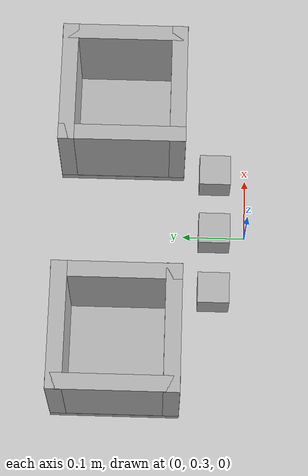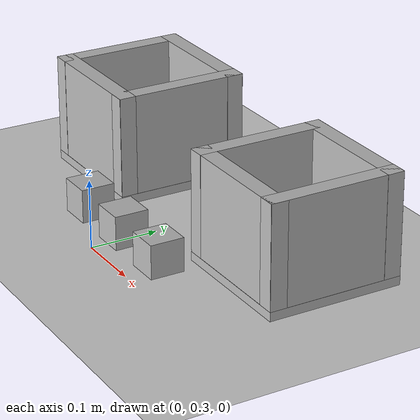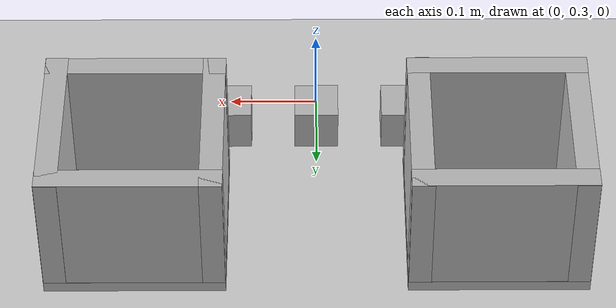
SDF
<?xml version="1.0" ?>
<sdf version="1.5">
  <world name="default">
    <include>
      <uri>model://ground_plane</uri>
    </include>
    <include>
      <uri>model://sun</uri>
    </include>

    <model name="box_with_walls_A">
      <pose>0.2 0.5 0 0 0 0</pose>

      <!-- Bottom -->
      <link name="bottom">
        <pose>0 0 0 0 0 0</pose>
        <collision name="collision">
          <geometry>
            <box>
              <size>0.2 0.2 0.025</size>
            </box>
          </geometry>
        </collision>
        <visual name="visual">
          <geometry>
            <box>
              <size>0.2 0.2 0.025</size>
            </box>
          </geometry>
        </visual>
      </link>

      <!-- Wall 1 -->
      <link name="wall_1">
        <pose>-0.08725 0 0.0875 0 0 0</pose>
        <collision name="collision">
          <geometry>
            <box>
              <size>0.025 0.2 0.15</size>
            </box>
          </geometry>
        </collision>
        <visual name="visual">
          <geometry>
            <box>
              <size>0.025 0.2 0.15</size>
            </box>
          </geometry>
        </visual>
      </link>

      <!-- Wall 2 -->
      <link name="wall_2">
        <pose>0.08725 0 0.0875 0 0 0</pose>
        <collision name="collision">
          <geometry>
            <box>
              <size>0.025 0.2 0.15</size>
            </box>
          </geometry>
        </collision>
        <visual name="visual">
          <geometry>
            <box>
              <size>0.025 0.2 0.15</size>
            </box>
          </geometry>
        </visual>
      </link>

      <!-- Wall 3 -->
      <link name="wall_3">
        <pose>0 -0.08725 0.0875 0 0 0</pose>
        <collision name="collision">
          <geometry>
            <box>
              <size>0.2 0.025 0.15</size>
            </box>
          </geometry>
        </collision>
        <visual name="visual">
          <geometry>
            <box>
              <size>0.2 0.025 0.15</size>
            </box>
          </geometry>
        </visual>
      </link>

      <!-- Wall 4 -->
      <link name="wall_4">
        <pose>0 0.08725 0.0875 0 0 0</pose>
        <collision name="collision">
          <geometry>
            <box>
              <size>0.2 0.025 0.15</size>
            </box>
          </geometry>
        </collision>
        <visual name="visual">
          <geometry>
            <box>
              <size>0.2 0.025 0.15</size>
            </box>
          </geometry>
        </visual>
      </link>

      <!-- Joints -->
      <joint name="bottom_wall_1_joint" type="fixed">
        <parent>bottom</parent>
        <child>wall_1</child>
      </joint>

      <joint name="bottom_wall_2_joint" type="fixed">
        <parent>bottom</parent>
        <child>wall_2</child>
      </joint>

      <joint name="bottom_wall_3_joint" type="fixed">
        <parent>bottom</parent>
        <child>wall_3</child>
      </joint>

      <joint name="bottom_wall_4_joint" type="fixed">
        <parent>bottom</parent>
        <child>wall_4</child>
      </joint>
    </model>

    <model name="box_with_walls_B">
      <pose>-0.2 0.5 0 0 0 0</pose>

      <!-- Bottom -->
      <link name="bottom">
        <pose>0 0 0 0 0 0</pose>
        <collision name="collision">
          <geometry>
            <box>
              <size>0.2 0.2 0.025</size>
            </box>
          </geometry>
        </collision>
        <visual name="visual">
          <geometry>
            <box>
              <size>0.2 0.2 0.025</size>
            </box>
          </geometry>
        </visual>
      </link>

      <!-- Wall 1 -->
      <link name="wall_1">
        <pose>-0.08725 0 0.0875 0 0 0</pose>
        <collision name="collision">
          <geometry>
            <box>
              <size>0.025 0.2 0.15</size>
            </box>
          </geometry>
        </collision>
        <visual name="visual">
          <geometry>
            <box>
              <size>0.025 0.2 0.15</size>
            </box>
          </geometry>
        </visual>
      </link>

      <!-- Wall 2 -->
      <link name="wall_2">
        <pose>0.08725 0 0.0875 0 0 0</pose>
        <collision name="collision">
          <geometry>
            <box>
              <size>0.025 0.2 0.15</size>
            </box>
          </geometry>
        </collision>
        <visual name="visual">
          <geometry>
            <box>
              <size>0.025 0.2 0.15</size>
            </box>
          </geometry>
        </visual>
      </link>

      <!-- Wall 3 -->
      <link name="wall_3">
        <pose>0 -0.08725 0.0875 0 0 0</pose>
        <collision name="collision">
          <geometry>
            <box>
              <size>0.2 0.025 0.15</size>
            </box>
          </geometry>
        </collision>
        <visual name="visual">
          <geometry>
            <box>
              <size>0.2 0.025 0.15</size>
            </box>
          </geometry>
        </visual>
      </link>

      <!-- Wall 4 -->
      <link name="wall_4">
        <pose>0 0.08725 0.0875 0 0 0</pose>
        <collision name="collision">
          <geometry>
            <box>
              <size>0.2 0.025 0.15</size>
            </box>
          </geometry>
        </collision>
        <visual name="visual">
          <geometry>
            <box>
              <size>0.2 0.025 0.15</size>
            </box>
          </geometry>
        </visual>
      </link>

      <!-- Joints -->
      <joint name="bottom_wall_1_joint" type="fixed">
        <parent>bottom</parent>
        <child>wall_1</child>
      </joint>

      <joint name="bottom_wall_2_joint" type="fixed">
        <parent>bottom</parent>
        <child>wall_2</child>
      </joint>

      <joint name="bottom_wall_3_joint" type="fixed">
        <parent>bottom</parent>
        <child>wall_3</child>
      </joint>

      <joint name="bottom_wall_4_joint" type="fixed">
        <parent>bottom</parent>
        <child>wall_4</child>
      </joint>
    </model>

    <model name="tennis_ball1">
      <pose>0.1 0.35 0.025 0 0 0</pose>
      <link name="link">
        <collision name="collision">
          <geometry>
            <box>
              <size>0.05 0.05 0.05</size>
            </box>
          </geometry>
          <surface>
            <friction>
              <ode>
                <mu>100.0</mu>
                <mu2>100.0</mu2>
              </ode>
            </friction>
          </surface>
        </collision>
        <visual name="visual">
          <geometry>
            <box>
              <size>0.05 0.05 0.05</size>
            </box>
          </geometry>
        </visual>
        <inertial>
          <mass>0.06</mass>
        </inertial>
      </link>
    </model>

    <model name="tennis_ball2">
      <pose>-0.1 0.35 0.025 0 0 0</pose>
      <link name="link">
        <collision name="collision">
          <geometry>
            <box>
              <size>0.05 0.05 0.05</size>
            </box>
          </geometry>
          <surface>
            <friction>
              <ode>
                <mu>100.0</mu>
                <mu2>100.0</mu2>
              </ode>
            </friction>
          </surface>
        </collision>
        <visual name="visual">
          <geometry>
            <box>
              <size>0.05 0.05 0.05</size>
            </box>
          </geometry>
        </visual>
        <inertial>
          <mass>0.06</mass>
        </inertial>
      </link>
    </model>

    <model name="tennis_ball3">
      <pose>0 0.35 0.025 0 0 0</pose>
      <link name="link">
        <collision name="collision">
          <geometry>
            <box>
              <size>0.05 0.05 0.05</size>
            </box>
          </geometry>
          <surface>
            <friction>
              <ode>
                <mu>100.0</mu>
                <mu2>100.0</mu2>
              </ode>
            </friction>
          </surface>
        </collision>
        <visual name="visual">
          <geometry>
            <box>
              <size>0.05 0.05 0.05</size>
            </box>
          </geometry>
        </visual>
        <inertial>
          <mass>0.06</mass>
        </inertial>
      </link>
    </model>

  </world>
</sdf>
